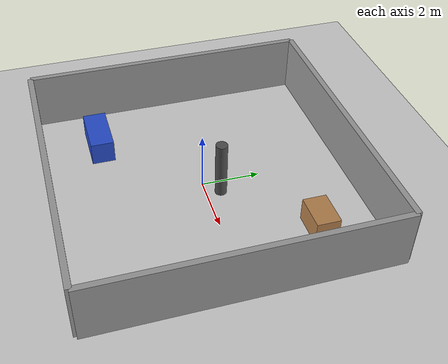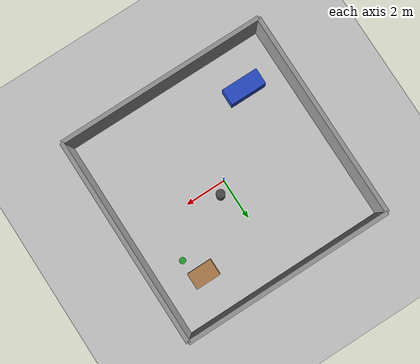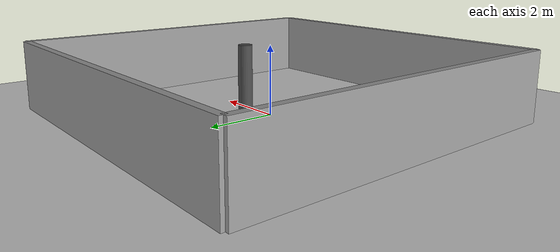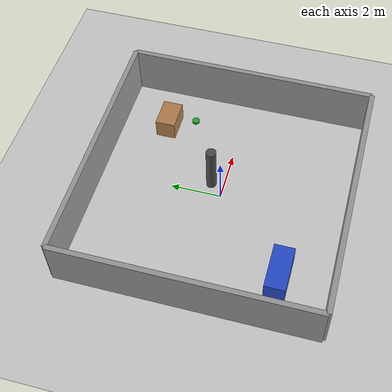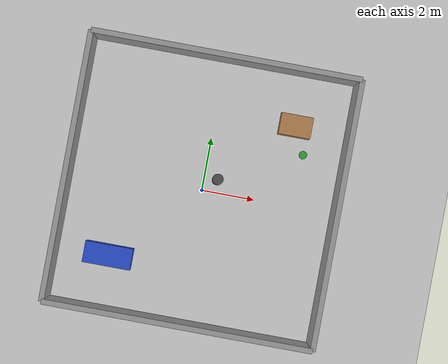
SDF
<sdf version="1.6">
 <world name="social_nav_world">
  <include><uri>model://ground_plane</uri></include>
  <include><uri>model://sun</uri></include>
  <physics type="ode">
   <real_time_update_rate>1000.0</real_time_update_rate>
   <max_step_size>0.001</max_step_size>
   <real_time_factor>1</real_time_factor>
   <ode><solver><type>quick</type><iters>150</iters><sor>1.4</sor></solver></ode>
  </physics>
  <model name="wall_north">
   <static>true</static>
   <pose>0 5 1 0 0 0</pose>
   <link name="link">
    <collision name="collision"><geometry><box><size>10 0.2 2</size></box></geometry></collision>
    <visual name="visual">
     <geometry><box><size>10 0.2 2</size></box></geometry>
     <material>
      <script><uri>file://media/materials/scripts/gazebo.material</uri><name>Gazebo/Grey</name></script>
     </material>
    </visual>
   </link>
  </model>
  <model name="wall_south">
   <static>true</static>
   <pose>0 -5 1 0 0 0</pose>
   <link name="link">
    <collision name="collision"><geometry><box><size>10 0.2 2</size></box></geometry></collision>
    <visual name="visual">
     <geometry><box><size>10 0.2 2</size></box></geometry>
     <material>
      <script><uri>file://media/materials/scripts/gazebo.material</uri><name>Gazebo/Grey</name></script>
     </material>
    </visual>
   </link>
  </model>
  <model name="wall_east">
   <static>true</static>
   <pose>5 0 1 0 0 1.5708</pose>
   <link name="link">
    <collision name="collision"><geometry><box><size>10 0.2 2</size></box></geometry></collision>
    <visual name="visual">
     <geometry><box><size>10 0.2 2</size></box></geometry>
     <material>
      <script><uri>file://media/materials/scripts/gazebo.material</uri><name>Gazebo/Grey</name></script>
     </material>
    </visual>
   </link>
  </model>
  <model name="wall_west">
   <static>true</static>
   <pose>-5 0 1 0 0 1.5708</pose>
   <link name="link">
    <collision name="collision"><geometry><box><size>10 0.2 2</size></box></geometry></collision>
    <visual name="visual">
     <geometry><box><size>10 0.2 2</size></box></geometry>
     <material>
      <script><uri>file://media/materials/scripts/gazebo.material</uri><name>Gazebo/Grey</name></script>
     </material>
    </visual>
   </link>
  </model>
  <model name="sofa">
   <static>true</static>
   <pose>-3.0 -3.0 0.4 0 0 0</pose>
   <link name="link">
    <collision name="collision"><geometry><box><size>1.8 0.8 0.8</size></box></geometry></collision>
    <visual name="visual">
     <geometry><box><size>1.8 0.8 0.8</size></box></geometry>
     <material>
      <script><uri>file://media/materials/scripts/gazebo.material</uri><name>Gazebo/Blue</name></script>
     </material>
    </visual>
   </link>
  </model>
  <model name="table">
   <static>true</static>
   <pose>3.0 3.0 0.4 0 0 0</pose>
   <link name="link">
    <collision name="collision"><geometry><box><size>1.2 0.8 0.8</size></box></geometry></collision>
    <visual name="visual">
     <geometry><box><size>1.2 0.8 0.8</size></box></geometry>
     <material>
      <script><uri>file://media/materials/scripts/gazebo.material</uri><name>Gazebo/Wood</name></script>
     </material>
    </visual>
   </link>
  </model>
  <model name="pillar">
   <static>true</static>
   <pose>0.5 0.5 1.0 0 0 0</pose>
   <link name="link">
    <collision name="collision">
     <geometry><cylinder><radius>0.2</radius><length>2.0</length></cylinder></geometry>
    </collision>
    <visual name="visual">
     <geometry><cylinder><radius>0.2</radius><length>2.0</length></cylinder></geometry>
     <material>
      <script><uri>file://media/materials/scripts/gazebo.material</uri><name>Gazebo/DarkGrey</name></script>
     </material>
    </visual>
   </link>
  </model>
  <model name="goal_marker">
   <static>true</static>
   <pose>3.5 2.0 0.05 0 0 0</pose>
   <link name="link">
    <visual name="visual">
     <geometry><cylinder><radius>0.15</radius><length>0.1</length></cylinder></geometry>
     <material>
      <script><uri>file://media/materials/scripts/gazebo.material</uri><name>Gazebo/Green</name></script>
     </material>
    </visual>
   </link>
  </model>
 </world>
</sdf>
